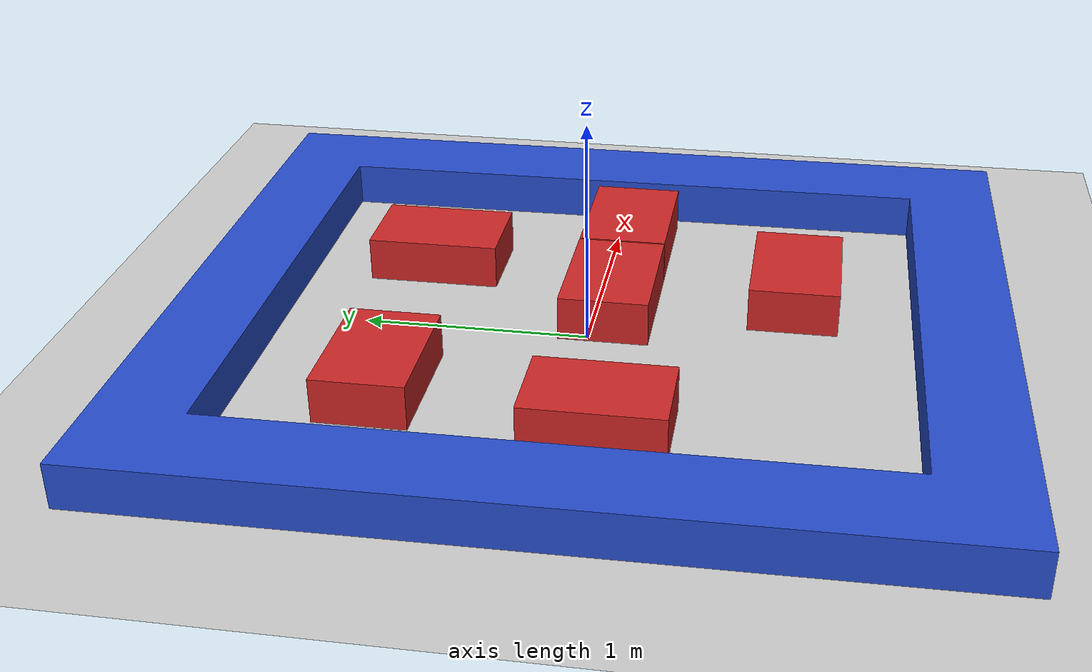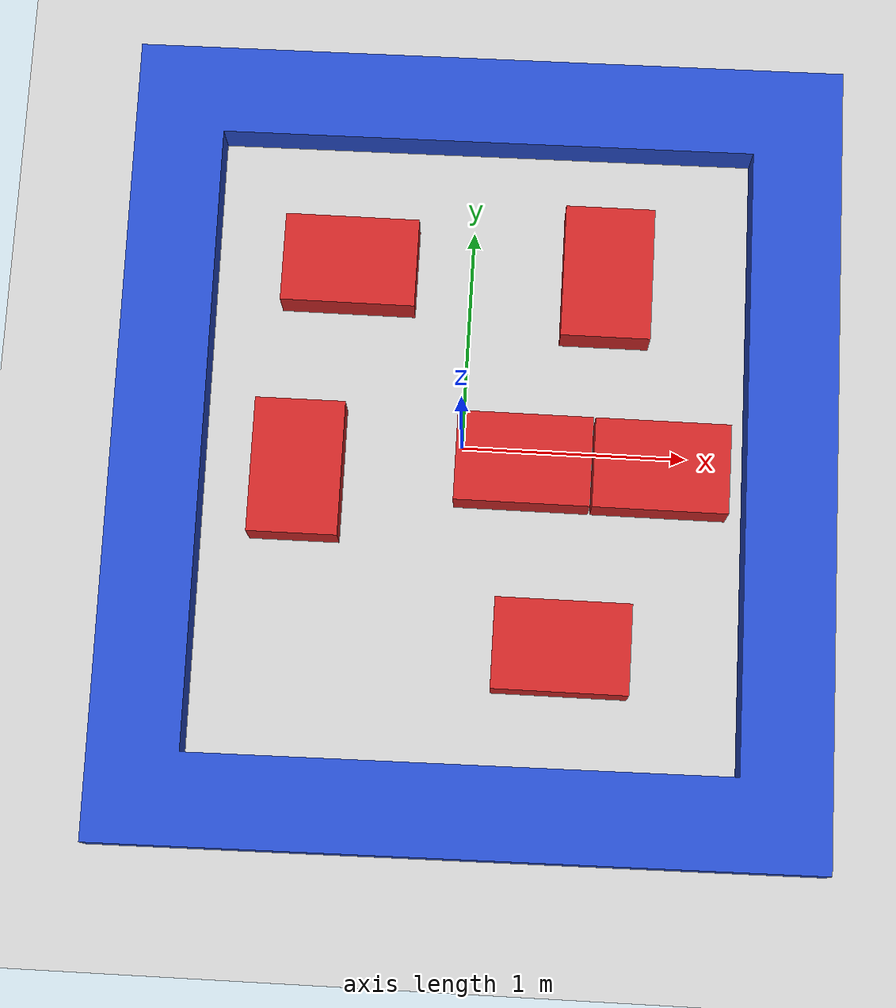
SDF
<sdf version="1.7">
 <world name="default">
  <light name="sun" type="directional">
   <pose>0 0 10 0 -0 0</pose>
   <diffuse>0.8 0.8 0.8 1</diffuse>
   <specular>0.2 0.2 0.2 1</specular>
   <attenuation>
    <range>1000</range>
    <constant>0.9</constant>
    <linear>0.01</linear>
    <quadratic>0.001</quadratic>
   </attenuation>
   <direction>-0.5 0.1 -0.9</direction>
   <spot><inner_angle>0</inner_angle><outer_angle>0</outer_angle><falloff>0</falloff></spot>
  </light>
  <model name="ground_plane">
   <static>1</static>
   <link name="link">
    <collision name="collision">
     <geometry><plane><normal>0 0 1</normal><size>100 100</size></plane></geometry>
     <surface><friction><ode><mu>100</mu><mu2>50</mu2></ode></friction></surface>
    </collision>
    <visual name="visual">
     <cast_shadows>0</cast_shadows>
     <geometry><plane><normal>0 0 1</normal><size>100 100</size></plane></geometry>
     <material>
      <script><uri>file://media/materials/scripts/gazebo.material</uri><name>Gazebo/Grey</name></script>
     </material>
    </visual>
   </link>
  </model>
  <gravity>0 0 -9.8</gravity>
  <magnetic_field>6e-06 2.3e-05 -4.2e-05</magnetic_field>
  <atmosphere type="adiabatic"/>
  <physics type="ode">
   <max_step_size>0.001</max_step_size>
   <real_time_factor>1</real_time_factor>
   <real_time_update_rate>1000</real_time_update_rate>
  </physics>
  <scene><ambient>0.4 0.4 0.4 1</ambient><background>0.7 0.7 0.7 1</background><shadows>1</shadows></scene>
  <audio><device>default</device></audio>
  <spherical_coordinates>
   <surface_model>EARTH_WGS84</surface_model>
   <latitude_deg>0</latitude_deg>
   <longitude_deg>0</longitude_deg>
   <elevation>0</elevation>
   <heading_deg>0</heading_deg>
  </spherical_coordinates>
  <model name="Arena_boxes_0">
   <link name="link_0">
    <inertial>
     <mass>1</mass>
     <inertia>
      <ixx>0.166667</ixx>
      <ixy>0</ixy>
      <ixz>0</ixz>
      <iyy>0.166667</iyy>
      <iyz>0</iyz>
      <izz>0.166667</izz>
     </inertia>
    </inertial>
    <visual name="visual">
     <geometry>
      <mesh>
       <uri>/home/albert/turtle_bug_ws/src/my_simulations/models/Arena.stl_sdf/Arena.stl</uri>
       <scale>1 1 1</scale>
      </mesh>
     </geometry>
     <material>
      <lighting>1</lighting>
      <script><uri>file://media/materials/scripts/gazebo.material</uri><name>Gazebo/Blue</name></script>
      <shader type="pixel"><normal_map>__default__</normal_map></shader>
     </material>
    </visual>
    <collision name="collision">
     <geometry>
      <mesh>
       <uri>/home/albert/turtle_bug_ws/src/my_simulations/models/Arena.stl_sdf/Arena.stl</uri>
       <scale>1 1 1</scale>
      </mesh>
     </geometry>
     <surface>
      <friction>
       <ode><mu>1</mu><mu2>1</mu2><fdir1>0 0 0</fdir1><slip1>0</slip1><slip2>0</slip2></ode>
       <torsional>
        <coefficient>1</coefficient>
        <patch_radius>0</patch_radius>
        <surface_radius>0</surface_radius>
        <use_patch_radius>1</use_patch_radius>
        <ode><slip>0</slip></ode>
       </torsional>
      </friction>
      <bounce><restitution_coefficient>0</restitution_coefficient><threshold>1e+06</threshold></bounce>
      <contact>
       <collide_without_contact>0</collide_without_contact>
       <collide_without_contact_bitmask>1</collide_without_contact_bitmask>
       <collide_bitmask>1</collide_bitmask>
       <ode>
        <soft_cfm>0</soft_cfm>
        <soft_erp>0.2</soft_erp>
        <kp>1e+13</kp>
        <kd>1</kd>
        <max_vel>0.01</max_vel>
        <min_depth>0</min_depth>
       </ode>
       <bullet>
        <split_impulse>1</split_impulse>
        <split_impulse_penetration_threshold>-0.01</split_impulse_penetration_threshold>
        <soft_cfm>0</soft_cfm>
        <soft_erp>0.2</soft_erp>
        <kp>1e+13</kp>
        <kd>1</kd>
       </bullet>
      </contact>
     </surface>
    </collision>
   </link>
   <static>0</static>
   <pose>0.458685 -0.610751 -0.325372 -1e-05 -4e-06 0.009743</pose>
  </model>
  <model name="Kutija_CRTA">
   <link name="link_2">
    <inertial>
     <mass>50</mass>
     <inertia>
      <ixx>0.166667</ixx>
      <ixy>0</ixy>
      <ixz>0</ixz>
      <iyy>0.166667</iyy>
      <iyz>0</iyz>
      <izz>0.166667</izz>
     </inertia>
    </inertial>
    <visual name="visual">
     <geometry>
      <mesh>
       <uri>/home/albert/turtle_bug_ws/src/my_simulations/models/Kutija_CRTA.stl_sdf/Kutija_CRTA.stl</uri>
       <scale>1 1 1</scale>
      </mesh>
     </geometry>
     <material>
      <lighting>1</lighting>
      <script><uri>file://media/materials/scripts/gazebo.material</uri><name>Gazebo/Red</name></script>
      <shader type="pixel"/>
     </material>
    </visual>
    <collision name="collision">
     <geometry>
      <mesh>
       <uri>/home/albert/turtle_bug_ws/src/my_simulations/models/Kutija_CRTA.stl_sdf/Kutija_CRTA.stl</uri>
       <scale>1 1 1</scale>
      </mesh>
     </geometry>
     <surface>
      <friction>
       <ode><mu>10</mu><mu2>10</mu2><fdir1>0 0 0</fdir1><slip1>0</slip1><slip2>0</slip2></ode>
       <torsional>
        <coefficient>1</coefficient>
        <patch_radius>0</patch_radius>
        <surface_radius>0</surface_radius>
        <use_patch_radius>1</use_patch_radius>
        <ode><slip>0</slip></ode>
       </torsional>
      </friction>
      <bounce><restitution_coefficient>0</restitution_coefficient><threshold>1e+06</threshold></bounce>
      <contact>
       <collide_without_contact>0</collide_without_contact>
       <collide_without_contact_bitmask>1</collide_without_contact_bitmask>
       <collide_bitmask>1</collide_bitmask>
       <ode>
        <soft_cfm>0</soft_cfm>
        <soft_erp>0.2</soft_erp>
        <kp>1e+13</kp>
        <kd>1</kd>
        <max_vel>0.01</max_vel>
        <min_depth>0</min_depth>
       </ode>
       <bullet>
        <split_impulse>1</split_impulse>
        <split_impulse_penetration_threshold>-0.01</split_impulse_penetration_threshold>
        <soft_cfm>0</soft_cfm>
        <soft_erp>0.2</soft_erp>
        <kp>1e+13</kp>
        <kd>1</kd>
       </bullet>
      </contact>
     </surface>
    </collision>
   </link>
   <static>1</static>
   <pose>0.582464 0.128142 0 0 -0 0</pose>
  </model>
  <model name="Kutija_CRTA_0">
   <link name="link_2">
    <inertial>
     <mass>50</mass>
     <inertia>
      <ixx>0.166667</ixx>
      <ixy>0</ixy>
      <ixz>0</ixz>
      <iyy>0.166667</iyy>
      <iyz>0</iyz>
      <izz>0.166667</izz>
     </inertia>
    </inertial>
    <visual name="visual">
     <geometry>
      <mesh>
       <uri>/home/albert/turtle_bug_ws/src/my_simulations/models/Kutija_CRTA.stl_sdf/Kutija_CRTA.stl</uri>
       <scale>1 1 1</scale>
      </mesh>
     </geometry>
     <material>
      <lighting>1</lighting>
      <script><uri>file://media/materials/scripts/gazebo.material</uri><name>Gazebo/Red</name></script>
      <shader type="pixel"/>
     </material>
    </visual>
    <collision name="collision">
     <geometry>
      <mesh>
       <uri>/home/albert/turtle_bug_ws/src/my_simulations/models/Kutija_CRTA.stl_sdf/Kutija_CRTA.stl</uri>
       <scale>1 1 1</scale>
      </mesh>
     </geometry>
     <surface>
      <friction>
       <ode><mu>10</mu><mu2>10</mu2><fdir1>0 0 0</fdir1><slip1>0</slip1><slip2>0</slip2></ode>
       <torsional>
        <coefficient>1</coefficient>
        <patch_radius>0</patch_radius>
        <surface_radius>0</surface_radius>
        <use_patch_radius>1</use_patch_radius>
        <ode><slip>0</slip></ode>
       </torsional>
      </friction>
      <bounce><restitution_coefficient>0</restitution_coefficient><threshold>1e+06</threshold></bounce>
      <contact>
       <collide_without_contact>0</collide_without_contact>
       <collide_without_contact_bitmask>1</collide_without_contact_bitmask>
       <collide_bitmask>1</collide_bitmask>
       <ode>
        <soft_cfm>0</soft_cfm>
        <soft_erp>0.2</soft_erp>
        <kp>1e+13</kp>
        <kd>1</kd>
        <max_vel>0.01</max_vel>
        <min_depth>0</min_depth>
       </ode>
       <bullet>
        <split_impulse>1</split_impulse>
        <split_impulse_penetration_threshold>-0.01</split_impulse_penetration_threshold>
        <soft_cfm>0</soft_cfm>
        <soft_erp>0.2</soft_erp>
        <kp>1e+13</kp>
        <kd>1</kd>
       </bullet>
      </contact>
     </surface>
    </collision>
   </link>
   <static>1</static>
   <pose>-0.026779 0.128547 0 0 -0 0</pose>
  </model>
  <model name="Kutija_CRTA_1">
   <link name="link_2">
    <inertial>
     <mass>50</mass>
     <inertia>
      <ixx>0.166667</ixx>
      <ixy>0</ixy>
      <ixz>0</ixz>
      <iyy>0.166667</iyy>
      <iyz>0</iyz>
      <izz>0.166667</izz>
     </inertia>
    </inertial>
    <visual name="visual">
     <geometry>
      <mesh>
       <uri>/home/albert/turtle_bug_ws/src/my_simulations/models/Kutija_CRTA.stl_sdf/Kutija_CRTA.stl</uri>
       <scale>1 1 1</scale>
      </mesh>
     </geometry>
     <material>
      <lighting>1</lighting>
      <script><uri>file://media/materials/scripts/gazebo.material</uri><name>Gazebo/Red</name></script>
      <shader type="pixel"/>
     </material>
    </visual>
    <collision name="collision">
     <geometry>
      <mesh>
       <uri>/home/albert/turtle_bug_ws/src/my_simulations/models/Kutija_CRTA.stl_sdf/Kutija_CRTA.stl</uri>
       <scale>1 1 1</scale>
      </mesh>
     </geometry>
     <surface>
      <friction>
       <ode><mu>10</mu><mu2>10</mu2><fdir1>0 0 0</fdir1><slip1>0</slip1><slip2>0</slip2></ode>
       <torsional>
        <coefficient>1</coefficient>
        <patch_radius>0</patch_radius>
        <surface_radius>0</surface_radius>
        <use_patch_radius>1</use_patch_radius>
        <ode><slip>0</slip></ode>
       </torsional>
      </friction>
      <bounce><restitution_coefficient>0</restitution_coefficient><threshold>1e+06</threshold></bounce>
      <contact>
       <collide_without_contact>0</collide_without_contact>
       <collide_without_contact_bitmask>1</collide_without_contact_bitmask>
       <collide_bitmask>1</collide_bitmask>
       <ode>
        <soft_cfm>0</soft_cfm>
        <soft_erp>0.2</soft_erp>
        <kp>1e+13</kp>
        <kd>1</kd>
        <max_vel>0.01</max_vel>
        <min_depth>0</min_depth>
       </ode>
       <bullet>
        <split_impulse>1</split_impulse>
        <split_impulse_penetration_threshold>-0.01</split_impulse_penetration_threshold>
        <soft_cfm>0</soft_cfm>
        <soft_erp>0.2</soft_erp>
        <kp>1e+13</kp>
        <kd>1</kd>
       </bullet>
      </contact>
     </surface>
    </collision>
   </link>
   <static>1</static>
   <pose>0.179683 -0.690494 0 0 -0 0</pose>
  </model>
  <model name="Kutija_CRTA_3">
   <link name="link_2">
    <inertial>
     <mass>50</mass>
     <inertia>
      <ixx>0.166667</ixx>
      <ixy>0</ixy>
      <ixz>0</ixz>
      <iyy>0.166667</iyy>
      <iyz>0</iyz>
      <izz>0.166667</izz>
     </inertia>
    </inertial>
    <visual name="visual">
     <geometry>
      <mesh>
       <uri>/home/albert/turtle_bug_ws/src/my_simulations/models/Kutija_CRTA.stl_sdf/Kutija_CRTA.stl</uri>
       <scale>1 1 1</scale>
      </mesh>
     </geometry>
     <material>
      <lighting>1</lighting>
      <script><uri>file://media/materials/scripts/gazebo.material</uri><name>Gazebo/Red</name></script>
      <shader type="pixel"/>
     </material>
    </visual>
    <collision name="collision">
     <geometry>
      <mesh>
       <uri>/home/albert/turtle_bug_ws/src/my_simulations/models/Kutija_CRTA.stl_sdf/Kutija_CRTA.stl</uri>
       <scale>1 1 1</scale>
      </mesh>
     </geometry>
     <surface>
      <friction>
       <ode><mu>10</mu><mu2>10</mu2><fdir1>0 0 0</fdir1><slip1>0</slip1><slip2>0</slip2></ode>
       <torsional>
        <coefficient>1</coefficient>
        <patch_radius>0</patch_radius>
        <surface_radius>0</surface_radius>
        <use_patch_radius>1</use_patch_radius>
        <ode><slip>0</slip></ode>
       </torsional>
      </friction>
      <bounce><restitution_coefficient>0</restitution_coefficient><threshold>1e+06</threshold></bounce>
      <contact>
       <collide_without_contact>0</collide_without_contact>
       <collide_without_contact_bitmask>1</collide_without_contact_bitmask>
       <collide_bitmask>1</collide_bitmask>
       <ode>
        <soft_cfm>0</soft_cfm>
        <soft_erp>0.2</soft_erp>
        <kp>1e+13</kp>
        <kd>1</kd>
        <max_vel>0.01</max_vel>
        <min_depth>0</min_depth>
       </ode>
       <bullet>
        <split_impulse>1</split_impulse>
        <split_impulse_penetration_threshold>-0.01</split_impulse_penetration_threshold>
        <soft_cfm>0</soft_cfm>
        <soft_erp>0.2</soft_erp>
        <kp>1e+13</kp>
        <kd>1</kd>
       </bullet>
      </contact>
     </surface>
    </collision>
   </link>
   <static>1</static>
   <pose>-0.525323 0.140456 0 0 0 -1.56775</pose>
  </model>
  <model name="Kutija_CRTA_2_clone">
   <link name="link_2">
    <inertial>
     <mass>50</mass>
     <inertia>
      <ixx>0.166667</ixx>
      <ixy>0</ixy>
      <ixz>0</ixz>
      <iyy>0.166667</iyy>
      <iyz>0</iyz>
      <izz>0.166667</izz>
     </inertia>
    </inertial>
    <visual name="visual">
     <geometry>
      <mesh>
       <uri>/home/albert/turtle_bug_ws/src/my_simulations/models/Kutija_CRTA.stl_sdf/Kutija_CRTA.stl</uri>
       <scale>1 1 1</scale>
      </mesh>
     </geometry>
     <material>
      <lighting>1</lighting>
      <script><uri>file://media/materials/scripts/gazebo.material</uri><name>Gazebo/Red</name></script>
      <shader type="pixel"/>
     </material>
    </visual>
    <collision name="collision">
     <geometry>
      <mesh>
       <uri>/home/albert/turtle_bug_ws/src/my_simulations/models/Kutija_CRTA.stl_sdf/Kutija_CRTA.stl</uri>
       <scale>1 1 1</scale>
      </mesh>
     </geometry>
     <surface>
      <friction>
       <ode><mu>10</mu><mu2>10</mu2><fdir1>0 0 0</fdir1><slip1>0</slip1><slip2>0</slip2></ode>
       <torsional>
        <coefficient>1</coefficient>
        <patch_radius>0</patch_radius>
        <surface_radius>0</surface_radius>
        <use_patch_radius>1</use_patch_radius>
        <ode><slip>0</slip></ode>
       </torsional>
      </friction>
      <bounce><restitution_coefficient>0</restitution_coefficient><threshold>1e+06</threshold></bounce>
      <contact>
       <collide_without_contact>0</collide_without_contact>
       <collide_without_contact_bitmask>1</collide_without_contact_bitmask>
       <collide_bitmask>1</collide_bitmask>
       <ode>
        <soft_cfm>0</soft_cfm>
        <soft_erp>0.2</soft_erp>
        <kp>1e+13</kp>
        <kd>1</kd>
        <max_vel>0.01</max_vel>
        <min_depth>0</min_depth>
       </ode>
       <bullet>
        <split_impulse>1</split_impulse>
        <split_impulse_penetration_threshold>-0.01</split_impulse_penetration_threshold>
        <soft_cfm>0</soft_cfm>
        <soft_erp>0.2</soft_erp>
        <kp>1e+13</kp>
        <kd>1</kd>
       </bullet>
      </contact>
     </surface>
    </collision>
   </link>
   <static>1</static>
   <pose>-0.849111 0.99259 0 0 -0 0</pose>
  </model>
  <model name="Kutija_CRTA_3_clone">
   <link name="link_2">
    <inertial>
     <mass>50</mass>
     <inertia>
      <ixx>0.166667</ixx>
      <ixy>0</ixy>
      <ixz>0</ixz>
      <iyy>0.166667</iyy>
      <iyz>0</iyz>
      <izz>0.166667</izz>
     </inertia>
    </inertial>
    <visual name="visual">
     <geometry>
      <mesh>
       <uri>/home/albert/turtle_bug_ws/src/my_simulations/models/Kutija_CRTA.stl_sdf/Kutija_CRTA.stl</uri>
       <scale>1 1 1</scale>
      </mesh>
     </geometry>
     <material>
      <lighting>1</lighting>
      <script><uri>file://media/materials/scripts/gazebo.material</uri><name>Gazebo/Red</name></script>
      <shader type="pixel"/>
     </material>
    </visual>
    <collision name="collision">
     <geometry>
      <mesh>
       <uri>/home/albert/turtle_bug_ws/src/my_simulations/models/Kutija_CRTA.stl_sdf/Kutija_CRTA.stl</uri>
       <scale>1 1 1</scale>
      </mesh>
     </geometry>
     <surface>
      <friction>
       <ode><mu>10</mu><mu2>10</mu2><fdir1>0 0 0</fdir1><slip1>0</slip1><slip2>0</slip2></ode>
       <torsional>
        <coefficient>1</coefficient>
        <patch_radius>0</patch_radius>
        <surface_radius>0</surface_radius>
        <use_patch_radius>1</use_patch_radius>
        <ode><slip>0</slip></ode>
       </torsional>
      </friction>
      <bounce><restitution_coefficient>0</restitution_coefficient><threshold>1e+06</threshold></bounce>
      <contact>
       <collide_without_contact>0</collide_without_contact>
       <collide_without_contact_bitmask>1</collide_without_contact_bitmask>
       <collide_bitmask>1</collide_bitmask>
       <ode>
        <soft_cfm>0</soft_cfm>
        <soft_erp>0.2</soft_erp>
        <kp>1e+13</kp>
        <kd>1</kd>
        <max_vel>0.01</max_vel>
        <min_depth>0</min_depth>
       </ode>
       <bullet>
        <split_impulse>1</split_impulse>
        <split_impulse_penetration_threshold>-0.01</split_impulse_penetration_threshold>
        <soft_cfm>0</soft_cfm>
        <soft_erp>0.2</soft_erp>
        <kp>1e+13</kp>
        <kd>1</kd>
       </bullet>
      </contact>
     </surface>
    </collision>
   </link>
   <static>1</static>
   <pose>0.806628 1.09813 0 0 0 -1.56775</pose>
  </model>
 </world>
</sdf>
